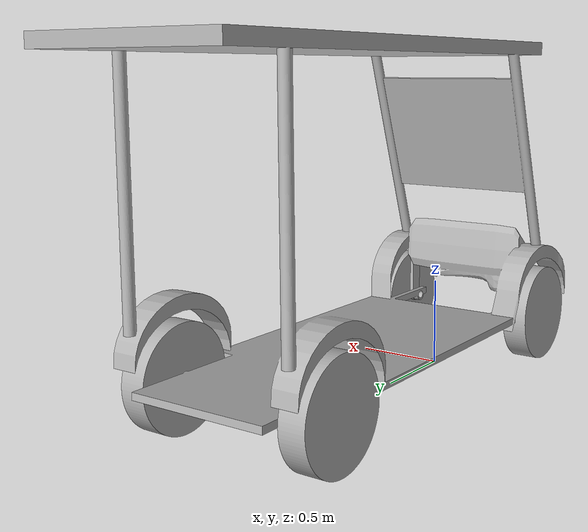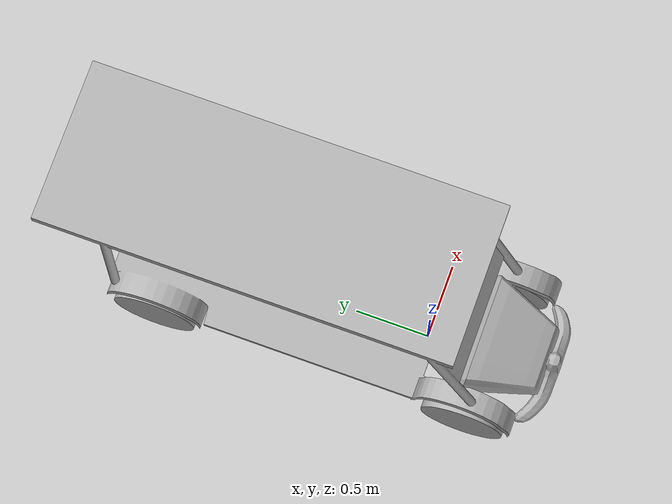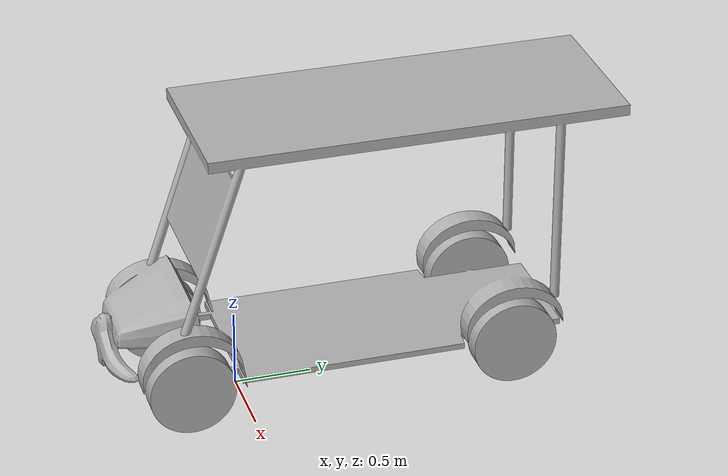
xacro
<?xml version='1.0' encoding='us-ascii'?>
<robot xmlns:xacro="http://www.ros.org/wiki/xacro" name="CART">

<xacro:include filename="$(find CART_description)/urdf/materials.xacro" />
<xacro:include filename="$(find CART_description)/urdf/CART.ros2control" />
<xacro:include filename="$(find CART_description)/urdf/CART.gazebo" />
<link name="base_link">
  <inertial>
    <origin xyz="-0.0038250693917988316 0.2294986787564171 0.4822630810508102" rpy="0 0 0" />
    <mass value="400.0" />
    <inertia ixx="40.0" iyy="40.0" izz="40.0" ixy="0.0" iyz="0.0" ixz="0.0" />
  </inertial>
  <visual>
    <origin xyz="0.0 0.0 0.0" rpy="0 0 0" />
    <geometry>
      <mesh filename="file://$(find CART_description)/meshes/base_link.stl" scale="0.1 0.1 0.1" />
    </geometry>
    <material name="silver" />
  </visual>
  <collision>
    <origin xyz="0.0 0.0 0.0" rpy="0 0 0" />
    <geometry>
      <mesh filename="file://$(find CART_description)/meshes/base_link.stl" scale="0.1 0.1 0.1" />
    </geometry>
  </collision>
</link>

<link name="wheel_front_left_1">
  <inertial>
    <origin xyz="0.07003795583009655 -7.508882369101216e-06 3.669548850047423e-05" rpy="0 0 0" />
    <mass value="20.0" />
    <inertia ixx="2.0" iyy="2.0" izz="2.0" ixy="0.0" iyz="0.0" ixz="0.0" />
  </inertial>
  <visual>
    <origin xyz="-0.38999999999999996 0.40109999999999996 -0.2943" rpy="0 0 0" />
    <geometry>
      <mesh filename="file://$(find CART_description)/meshes/wheel_front_left_1.stl" scale="0.1 0.1 0.1" />
    </geometry>
    <material name="silver" />
  </visual>
  <collision>
    <origin xyz="-0.38999999999999996 0.40109999999999996 -0.2943" rpy="0 0 0" />
    <geometry>
      <mesh filename="file://$(find CART_description)/meshes/wheel_front_left_1.stl" scale="0.1 0.1 0.1" />
    </geometry>
  </collision>
</link>

<link name="wheel_front_right_1">
  <inertial>
    <origin xyz="-0.08582176491636972 1.918259053572055e-05 -3.132428975883769e-05" rpy="0 0 0" />
    <mass value="20.0" />
    <inertia ixx="2.0" iyy="2.0" izz="2.0" ixy="0.0" iyz="0.0" ixz="0.0" />
  </inertial>
  <visual>
    <origin xyz="0.3738 0.4007 -0.2946" rpy="0 0 0" />
    <geometry>
      <mesh filename="file://$(find CART_description)/meshes/wheel_front_right_1.stl" scale="0.1 0.1 0.1" />
    </geometry>
    <material name="silver" />
  </visual>
  <collision>
    <origin xyz="0.3738 0.4007 -0.2946" rpy="0 0 0" />
    <geometry>
      <mesh filename="file://$(find CART_description)/meshes/wheel_front_right_1.stl" scale="0.1 0.1 0.1" />
    </geometry>
  </collision>
</link>

<link name="top_1">
  <inertial>
    <origin xyz="-0.0002885105679165245 1.0831158257510547 1.4744486832972712" rpy="0 0 0" />
    <mass value="400.0" />
    <inertia ixx="40.0" iyy="40.0" izz="40.0" ixy="0.0" iyz="0.0" ixz="0.0" />
  </inertial>
  <visual>
    <origin xyz="-0.0036999999999999997 0.0723 -0.3302" rpy="0 0 0" />
    <geometry>
      <mesh filename="file://$(find CART_description)/meshes/top_1.stl" scale="0.1 0.1 0.1" />
    </geometry>
    <material name="silver" />
  </visual>
  <collision>
    <origin xyz="-0.0036999999999999997 0.0723 -0.3302" rpy="0 0 0" />
    <geometry>
      <mesh filename="file://$(find CART_description)/meshes/top_1.stl" scale="0.1 0.1 0.1" />
    </geometry>
  </collision>
</link>

<link name="wheel_back_left_1">
  <inertial>
    <origin xyz="0.07006884471040231 -4.602516662094436e-05 2.3179383267218218e-05" rpy="0 0 0" />
    <mass value="20.0" />
    <inertia ixx="2.0" iyy="2.0" izz="2.0" ixy="0.0" iyz="0.0" ixz="0.0" />
  </inertial>
  <visual>
    <origin xyz="-0.38839999999999997 -1.7233999999999998 -0.292" rpy="0 0 0" />
    <geometry>
      <mesh filename="file://$(find CART_description)/meshes/wheel_back_left_1.stl" scale="0.1 0.1 0.1" />
    </geometry>
    <material name="silver" />
  </visual>
  <collision>
    <origin xyz="-0.38839999999999997 -1.7233999999999998 -0.292" rpy="0 0 0" />
    <geometry>
      <mesh filename="file://$(find CART_description)/meshes/wheel_back_left_1.stl" scale="0.1 0.1 0.1" />
    </geometry>
  </collision>
</link>

<link name="wheel_back_right_1">
  <inertial>
    <origin xyz="-0.0700689652706009 -2.2413447569452627e-05 -3.3770651213221176e-05" rpy="0 0 0" />
    <mass value="20.0" />
    <inertia ixx="2.0" iyy="2.0" izz="2.0" ixy="0.0" iyz="0.0" ixz="0.0" />
  </inertial>
  <visual>
    <origin xyz="0.38939999999999997 -1.7224 -0.2942" rpy="0 0 0" />
    <geometry>
      <mesh filename="file://$(find CART_description)/meshes/wheel_back_right_1.stl" scale="0.1 0.1 0.1" />
    </geometry>
    <material name="silver" />
  </visual>
  <collision>
    <origin xyz="0.38939999999999997 -1.7224 -0.2942" rpy="0 0 0" />
    <geometry>
      <mesh filename="file://$(find CART_description)/meshes/wheel_back_right_1.stl" scale="0.1 0.1 0.1" />
    </geometry>
  </collision>
</link>

<link name="Knuckle_left_1">
  <inertial>
    <origin xyz="0.009999991729855431 -7.508833852962193e-06 0.13166664593971658" rpy="0 0 0" />
    <mass value="20.0" />
    <inertia ixx="2.0" iyy="2.0" izz="2.0" ixy="0.0" iyz="0.0" ixz="0.0" />
  </inertial>
  <visual>
    <origin xyz="-0.37 0.40109999999999996 -0.2943" rpy="0 0 0" />
    <geometry>
      <mesh filename="file://$(find CART_description)/meshes/Knuckle_left_1.stl" scale="0.1 0.1 0.1" />
    </geometry>
    <material name="silver" />
  </visual>
  <collision>
    <origin xyz="-0.37 0.40109999999999996 -0.2943" rpy="0 0 0" />
    <geometry>
      <mesh filename="file://$(find CART_description)/meshes/Knuckle_left_1.stl" scale="0.1 0.1 0.1" />
    </geometry>
  </collision>
</link>

<link name="knuckle_right_1">
  <inertial>
    <origin xyz="-0.009958800816123499 1.9182586747691632e-05 0.13475995310489042" rpy="0 0 0" />
    <mass value="20.0" />
    <inertia ixx="2.0" iyy="2.0" izz="2.0" ixy="0.0" iyz="0.0" ixz="0.0" />
  </inertial>
  <visual>
    <origin xyz="0.362 0.4007 -0.2946" rpy="0 0 0" />
    <geometry>
      <mesh filename="file://$(find CART_description)/meshes/knuckle_right_1.stl" scale="0.1 0.1 0.1" />
    </geometry>
    <material name="silver" />
  </visual>
  <collision>
    <origin xyz="0.362 0.4007 -0.2946" rpy="0 0 0" />
    <geometry>
      <mesh filename="file://$(find CART_description)/meshes/knuckle_right_1.stl" scale="0.1 0.1 0.1" />
    </geometry>
  </collision>
</link>

<joint name="Revolute 10" type="continuous">
  <origin xyz="0.02 0.0 0.0" rpy="0 0 0" />
  <parent link="Knuckle_left_1" />
  <child link="wheel_front_left_1" />
  <axis xyz="1.0 0.0 0.0" />
</joint>

<joint name="Revolute 11" type="continuous">
  <origin xyz="-0.0118 0.0 0.0" rpy="0 0 0" />
  <parent link="knuckle_right_1" />
  <child link="wheel_front_right_1" />
  <axis xyz="1.0 0.0 0.0" />
</joint>

<joint name="Rigid 15" type="fixed">
  <origin xyz="0.0036999999999999997 -0.0723 0.3302" rpy="0 0 0" />
  <parent link="base_link" />
  <child link="top_1" />
</joint>

<joint name="Revolute 20" type="continuous">
  <origin xyz="0.38839999999999997 1.7233999999999998 0.292" rpy="0 0 0" />
  <parent link="base_link" />
  <child link="wheel_back_left_1" />
  <axis xyz="1.0 0.0 0.0" />
</joint>

<joint name="Revolute 21" type="continuous">
  <origin xyz="-0.38939999999999997 1.7224 0.2942" rpy="0 0 0" />
  <parent link="base_link" />
  <child link="wheel_back_right_1" />
  <axis xyz="1.0 0.0 0.0" />
</joint>

<joint name="Revolute 22" type="revolute">
  <origin xyz="0.37 -0.40109999999999996 0.2943" rpy="0 0 0" />
  <parent link="base_link" />
  <child link="Knuckle_left_1" />
  <axis xyz="0.0 0.0 1.0" />
  <limit upper="0.523599" lower="-0.523599" effort="100" velocity="100" />
</joint>

<joint name="Revolute 23" type="revolute">
  <origin xyz="-0.362 -0.4007 0.2946" rpy="0 0 0" />
  <parent link="base_link" />
  <child link="knuckle_right_1" />
  <axis xyz="0.0 0.0 1.0" />
  <limit upper="0.523599" lower="-0.523599" effort="100" velocity="100" />
</joint>

<gazebo><plugin filename="gz-sim-ackermann-steering-system" name="gz::sim::systems::AckermannSteering"><left_joint>Revolute 20</left_joint><right_joint>Revolute 21</right_joint><left_steering_joint>Revolute 22</left_steering_joint><right_steering_joint>Revolute 23</right_steering_joint><kingpin_width>0.755</kingpin_width><steering_limit>0.8</steering_limit><wheel_base>2.124</wheel_base><wheel_radius>0.277</wheel_radius><min_velocity>-5</min_velocity><max_velocity>5</max_velocity><topic>/cmd_vel</topic></plugin></gazebo></robot>

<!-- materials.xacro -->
<robot name="CART" xmlns:xacro="http://www.ros.org/wiki/xacro" >

<material name="silver">
  <color rgba="0.700 0.700 0.700 1.000"/>
</material>

<material name="safety_orange">
  <color rgba="1.000 0.350 0.000 1.000"/>
</material>

<material name="canopy_white">
  <color rgba="0.950 0.950 0.950 1.000"/>
</material>

<material name="rubber_black">
  <color rgba="0.100 0.100 0.100 1.000"/>
</material>

</robot>

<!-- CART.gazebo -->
<robot name="CART" xmlns:xacro="http://www.ros.org/wiki/xacro" >

<xacro:property name="body_color" value="Gazebo/Silver" />

<gazebo reference="base_link">
  <material>${body_color}</material>
  <mu1>0.2</mu1>
  <mu2>0.2</mu2>
  <self_collide>true</self_collide>
  <gravity>true</gravity>
</gazebo>

<gazebo reference="wheel_front_left_1">
  <material>${body_color}</material>
  <mu1>0.2</mu1>
  <mu2>0.2</mu2>
  <self_collide>true</self_collide>
</gazebo>

<gazebo reference="wheel_front_right_1">
  <material>${body_color}</material>
  <mu1>0.2</mu1>
  <mu2>0.2</mu2>
  <self_collide>true</self_collide>
</gazebo>

<gazebo reference="top_1">
  <material>${body_color}</material>
  <mu1>0.2</mu1>
  <mu2>0.2</mu2>
  <self_collide>true</self_collide>
</gazebo>

<gazebo reference="wheel_back_left_1">
  <material>${body_color}</material>
  <mu1>0.2</mu1>
  <mu2>0.2</mu2>
  <self_collide>true</self_collide>
</gazebo>

<gazebo reference="wheel_back_right_1">
  <material>${body_color}</material>
  <mu1>0.2</mu1>
  <mu2>0.2</mu2>
  <self_collide>true</self_collide>
</gazebo>

<gazebo reference="Knuckle_left_1">
  <material>${body_color}</material>
  <mu1>0.2</mu1>
  <mu2>0.2</mu2>
  <self_collide>true</self_collide>
</gazebo>

<gazebo reference="knuckle_right_1">
  <material>${body_color}</material>
  <mu1>0.2</mu1>
  <mu2>0.2</mu2>
  <self_collide>true</self_collide>
</gazebo>

</robot>
